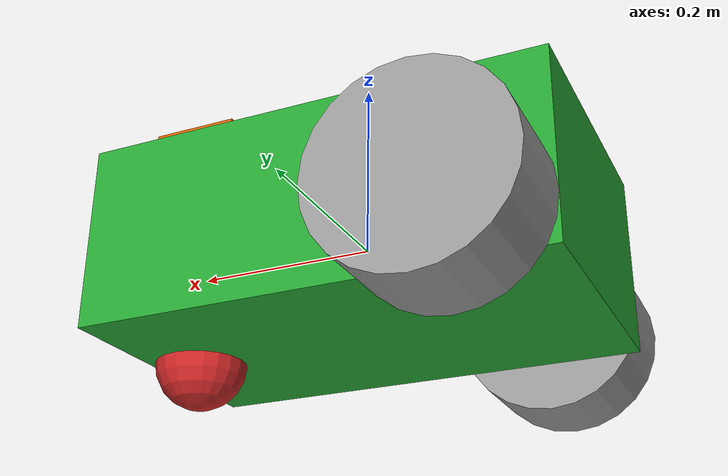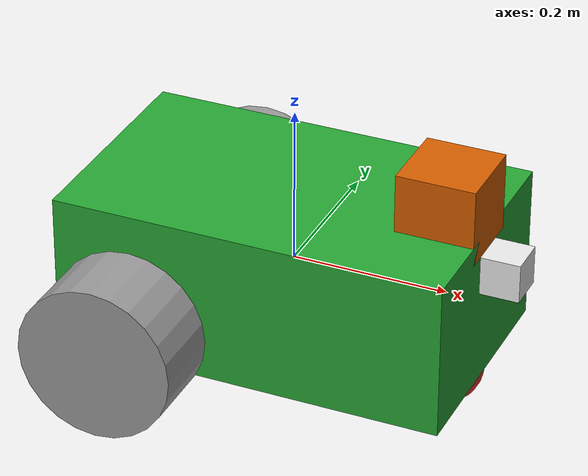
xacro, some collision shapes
<?xml version="1.0"?>
<!-- Revolute-Revolute Manipulator -->
<robot name="katos_robot"  xmlns:xacro="http://www.ros.org/wiki/xacro">

    <!--- CONSTANTS FOR ROBOT'S DIMENSIONS-->
        <xacro:property name="width" value="0.5"/>
        <xacro:property name="depth" value="0.3"/>
        <xacro:property name="height" value="0.2"/>
        <xacro:property name="length1" value="0.1"/>
        <xacro:property name="radius1" value="0.1"/>
        <xacro:property name="radius2" value="0.05"/>
        <xacro:property name="rotation" value="1.570795"/>

        <xacro:property name="mass" value="3"/>
        <xacro:property name="mass2" value="0.3"/>
        <xacro:property name="mass1" value="1"/>

    <!--CONSTANT'S FOR CAMERA-->
    <xacro:property name="cameraSize" value="0.05"/>
    <xacro:property name="cameraMass" value="0.1"/>

    <!--Import Rviz colors-->
    <xacro:include filename="$(find my_robot)/urdf/materials.xacro"/>

    <!-- Import Gazebo plugins, Gazebo colors-->
    <xacro:include filename="$(find my_robot)/urdf/robot.gazebo"/>

    <!--Default inertia for boxes-->
    <xacro:macro name="default_inertial_box" params="z_value mass i_value">
        <inertial>
            <origin xyz="0 0 ${z_value}" rpy="0 0 0"/>
            <mass value="${mass}"/>
            <inertia ixx="${i_value}" ixy="0.0" ixz="0.0"
                     iyy="${i_value}" iyz="0.0"
                     izz="${i_value}"/>
        </inertial>
    </xacro:macro>

    <!--BASE LINK -->
        <link name="base_link">
            <visual>
                <origin xyz="0 0 0" rpy="0 0 0"/>
                <geometry>
                    <box size="${width} ${depth} ${height}"/>
                </geometry>
                <material name="green"/>
            </visual>
            <!--Base collision,mass and inetria -->
            <collision>
                <origin xyz="0 0 0" rpy="0 0 0"/>
                <geometry>
                    <box size="${width} ${depth} ${height}"/>
                </geometry>
            </collision>
            <inertial>

                <mass value="${mass}"/>
                <inertia ixx="0.73" ixy="0.0" ixz="0.0" iyy="0.65" iyz="0.0" izz="0.65"/>
            </inertial>
        </link>

    <!--..CAMERA..-->
     <link name="camera_link">
        <visual>
            <origin xyz="0 0 0" rpy="0 0 0"/>
            <geometry>
                <box size="${cameraSize} ${cameraSize} ${cameraSize}"/>
            </geometry>
            <material name="white"/>
        </visual>
        <collision>
            <origin xyz="0 0 0" rpy="0 0 0"/>
            <geometry>
                <box size="${cameraSize} ${cameraSize} ${cameraSize}"/>
            </geometry>
        </collision>
        <xacro:default_inertial_box z_value="0" mass="${cameraMass}" i_value="0.00005"/>
    </link>

    <!--CAMERA JOINT-->
    <joint name="camera_joint" type="fixed">
        <parent link="base_link"/>
        <child link="camera_link"/>
        <origin xyz="${width/2+0.025} 0 ${height/4}" rpy="${rotation*4} 0 ${rotation*4}"/>
        <axis xyz="0 1 0"/>
    </joint>

    <!-- RIGHT WHEEL-->
    <link name="right_wheel">
       <visual>
            <origin xyz="0 0 0" rpy="${rotation} 0 0"/>
            <geometry>
                <cylinder length="${length1}" radius="${radius1}"/>
            </geometry>
            <material name="grey"/>
        </visual>
        <!--Collision, mass and inertia for Right wheel-->
        <collision>
               <origin xyz="0 0 0" rpy="${rotation} 0 0"/>
           <geometry>
               <cylinder length="${length1}" radius="${radius1}"/>
            </geometry>
        </collision>
        <inertial>
            <mass value="${mass1}"/>
            <inertia ixx="0.26" ixy="0.0" ixz="0.0"
                     iyy="0.015" iyz="0.0"
                     izz="0.015"/>
        </inertial>
    </link>
    <!--Joint for right wheel-->
        <joint name="joint_right_wheel" type="continuous">
            <parent link="base_link"/>
            <child link="right_wheel"/>
            <origin xyz="${-width/2+0.1} ${-0.05-depth/2} ${-radius1/2}" rpy="0 0 0"/>
            <axis xyz="0 1 0"/>
        </joint>

    <!--LEFT WHEEL-->
    <link name="left_wheel">
        <visual>
            <origin xyz="0 0 0" rpy="${rotation} 0 0"/>
            <geometry>
                <cylinder length="${length1}" radius="${radius1}"/>
            </geometry>
               <material name="grey"/>
        </visual>
        <!--Collision, mass and inertia for left wheel-->
        <collision>
            <origin xyz="0 0 0" rpy="${rotation} 0 0"/>
            <geometry>
                <cylinder length="${length1}" radius="${radius1}"/>
                </geometry>
        </collision>
        <inertial>
            <mass value="${mass1}"/>
            <inertia ixx="0.26" ixy="0.0" ixz="0.0"
                     iyy="0.015" iyz="0.0"
                     izz="0.015"/>
        </inertial>
    </link>
    <!--Joint for left wheel-->
    <joint name="joint_left_wheel" type="continuous">
        <parent link="base_link"/>
        <child link="left_wheel"/>
        <origin xyz="${-width/2+0.1} ${0.05+depth/2} ${-radius1/2}" rpy="0 0 0"/>
        <axis xyz="0 1 0"/>
    </joint>

    <!--CASTER-->
    <link name="caster">
        <visual>
            <origin xyz="0 0 0" rpy="0 0 0"/>
            <geometry>
                <sphere radius="${radius2}"/>
            </geometry>
            <material name="red"/>
        </visual>
        <!--Collision,mas and inertia for caster-->
        <collision>
            <origin xyz="0 0 0" rpy="0 0 0"/>
            <geometry>
                <sphere radius="${radius2}"/>
            </geometry>
        </collision>
        <inertial>
            <mass value="${mass2}"/>
            <inertia ixx="0.001" ixy="0.0" ixz="0.0"
                     iyy="0.001" iyz="0.0"
                     izz="0.001"/>
        </inertial>
    </link>
        <!--Joint for caster-->
        <joint name="joint_caster" type="fixed">
            <parent link="base_link"/>
            <child link="caster"/>
            <origin xyz="${width/2-radius1/2} 0 -0.1"/>
        </joint>

    <!--LINK LASER-->
    <link name="hokuyo">
        <collision>
            <origin xyz="0 0 0" rpy="0 0 0"/>
            <geometry>
                <box size="0.1 0.1 0.1"/>
            </geometry>
        </collision>
        <visual>
            <origin xyz="0 0 0" rpy="0 0 0"/>
            <geometry>
                <mesh filename="file://$(find my_robot)/meshes/hokuyo.dae"/>
            </geometry>
        </visual>
        <inertial>
            <mass value="1e-5" />
            <origin xyz="0 0 0" rpy="0 0 0"/>
            <inertia ixx="0.0005" ixy="0" ixz="0" iyy="0.0005" iyz="0" izz="0.0005" />
        </inertial>
    </link>

    <!--JOINT FOR LASER -->
    <joint name="joint_laser" type="fixed">
        <parent link="base_link"/>
        <child link="hokuyo"/>
        <axis xyz="0 1 0"/>
        <origin xyz="${width/2-0.05} 0 ${height/2+0.025}" rpy="0 0 0"/>
    </joint>

</robot>
